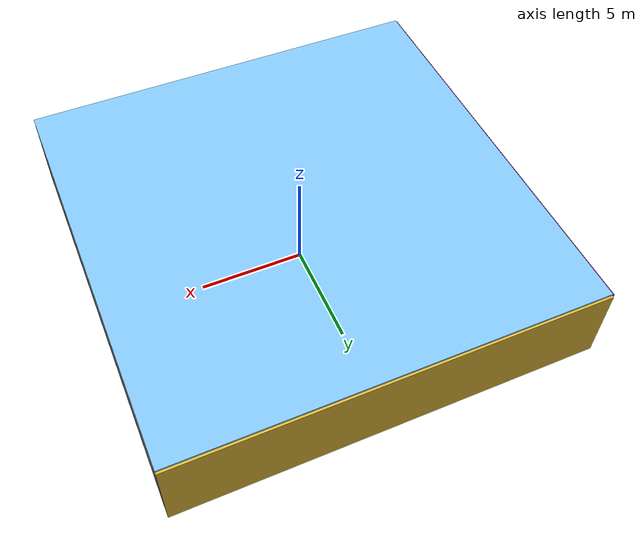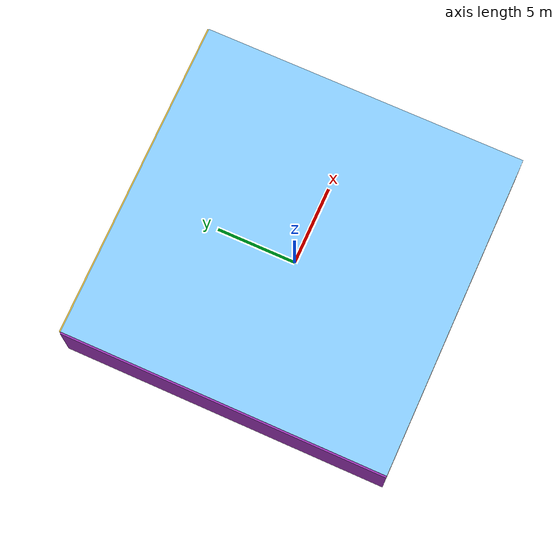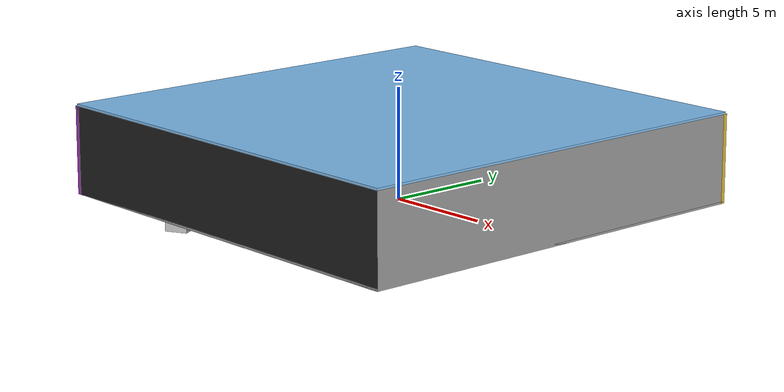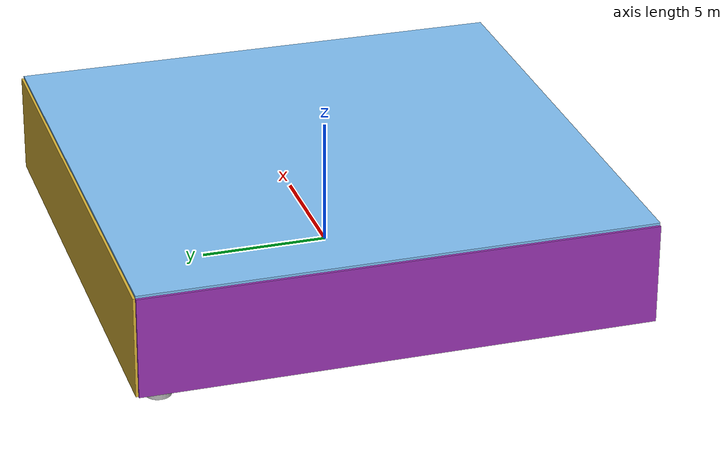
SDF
<sdf version="1.4">
 <world name="default">
  <physics type="ode">
   <max_step_size>0.001</max_step_size>
   <real_time_factor>1</real_time_factor>
   <real_time_update_rate>1000</real_time_update_rate>
   <gravity>0 0 -9.8</gravity>
  </physics>
  <scene><ambient>0.4 0.4 0.4 1</ambient><background>0.7 0.7 0.7 1</background><shadows>1</shadows></scene>
  <model name="Surrounding">
   <static>1</static>
   <link name="Ceiling">
    <collision name="Ceiling_Collision"><geometry><box><size>20 20 0.1</size></box></geometry></collision>
    <visual name="Ceiling_Visual">
     <geometry><box><size>20 20 0.1</size></box></geometry>
     <material>
      <script><uri>file://media/materials/scripts/gazebo.material</uri><name>Gazebo/SkyBlue</name></script>
     </material>
    </visual>
    <pose>0 0 4.05 0 0 0</pose>
   </link>
   <link name="Wall_South">
    <collision name="Wall_South_Collision">
     <geometry><box><size>20 0 4</size></box></geometry>
     <pose>0 0 2 0 -0 0</pose>
    </collision>
    <visual name="Wall_South_Visual">
     <pose>0 0 2 0 -0 0</pose>
     <geometry><box><size>20 0 4</size></box></geometry>
     <material>
      <script><uri>file://media/materials/scripts/gazebo.material</uri><name>Gazebo/FlatBlack</name></script>
     </material>
    </visual>
    <velocity_decay><linear>0</linear><angular>0</angular></velocity_decay>
    <pose>0 -10 0 0 -0 0</pose>
   </link>
   <link name="Wall_East">
    <collision name="Wall_21_Collision">
     <geometry><box><size>20 0 4</size></box></geometry>
     <pose>0 0 2 0 -0 0</pose>
    </collision>
    <visual name="Wall_21_Visual">
     <pose>0 0 2 0 -0 0</pose>
     <geometry><box><size>20 0 4</size></box></geometry>
     <material>
      <script><uri>file://media/materials/scripts/gazebo.material</uri><name>Gazebo/GreyGradientSky</name></script>
     </material>
    </visual>
    <velocity_decay><linear>0</linear><angular>0</angular></velocity_decay>
    <pose>10 0 0 0 -0 1.5708</pose>
   </link>
   <link name="Wall_North">
    <collision name="Wall_22_Collision">
     <geometry><box><size>20 0.2 4</size></box></geometry>
     <pose>0 0 2 0 -0 0</pose>
    </collision>
    <visual name="Wall_22_Visual">
     <pose>0 0 2 0 -0 0</pose>
     <geometry><box><size>20 0.2 4</size></box></geometry>
     <material>
      <script><uri>file://media/materials/scripts/gazebo.material</uri><name>Gazebo/Gold</name></script>
     </material>
    </visual>
    <velocity_decay><linear>0</linear><angular>0</angular></velocity_decay>
    <pose>0 10 0 0 -0 0</pose>
   </link>
   <link name="Wall_West">
    <collision name="Wall_23_Collision">
     <geometry><box><size>20 0.2 4</size></box></geometry>
     <pose>0 0 2 0 -0 0</pose>
    </collision>
    <visual name="Wall_23_Visual">
     <pose>0 0 2 0 -0 0</pose>
     <geometry><box><size>20 0.2 4</size></box></geometry>
     <material>
      <script><uri>file://media/materials/scripts/gazebo.material</uri><name>Gazebo/PurpleGlow</name></script>
     </material>
    </visual>
    <velocity_decay><linear>0</linear><angular>0</angular></velocity_decay>
    <pose>-10 0 0 0 0 -1.5708</pose>
   </link>
   <link name="Ground_link">
    <collision name="collision">
     <pose>0 0 .05 0 -0 0</pose>
     <geometry><box><size>20 20 0.1</size></box></geometry>
    </collision>
    <visual name="visual">
     <pose>0 0 .05 0 -0 0</pose>
     <geometry><box><size>20 20 0.1</size></box></geometry>
     <material>
      <script><uri>file://media/materials/scripts/gazebo.material</uri><name>Gazebo/GreyGradientSky</name></script>
     </material>
    </visual>
   </link>
   <static>1</static>
  </model>
  <spherical_coordinates>
   <surface_model>EARTH_WGS84</surface_model>
   <latitude_deg>0</latitude_deg>
   <longitude_deg>0</longitude_deg>
   <elevation>0</elevation>
   <heading_deg>0</heading_deg>
  </spherical_coordinates>
  <light name="lightball_0" type="diffuse">
   <diffuse>0.8 0.8 0.8 1</diffuse>
   <specular>0.2 0.2 0.2 1</specular>
   <attenuation>
    <range>100</range>
    <constant>0.7</constant>
    <linear>0.01</linear>
    <quadratic>0.001</quadratic>
   </attenuation>
   <direction>-0.5 0.1 -0.9</direction>
   <pose>-9.37175504772 -9.66087151027 2.27961251877 0 0 0</pose>
  </light>
  <light name="lightball_1" type="diffuse">
   <diffuse>0.8 0.8 0.8 1</diffuse>
   <specular>0.2 0.2 0.2 1</specular>
   <attenuation>
    <range>100</range>
    <constant>0.7</constant>
    <linear>0.01</linear>
    <quadratic>0.001</quadratic>
   </attenuation>
   <direction>-0.5 0.1 -0.9</direction>
   <pose>5.76442989192 -7.53862469891 0.934694591893 0 0 0</pose>
  </light>
  <light name="lightball_2" type="diffuse">
   <diffuse>0.8 0.8 0.8 1</diffuse>
   <specular>0.2 0.2 0.2 1</specular>
   <attenuation>
    <range>100</range>
    <constant>0.7</constant>
    <linear>0.01</linear>
    <quadratic>0.001</quadratic>
   </attenuation>
   <direction>-0.5 0.1 -0.9</direction>
   <pose>-4.42031138808 -2.08294366074 2.32813347147 0 0 0</pose>
  </light>
  <light name="lightball_3" type="diffuse">
   <diffuse>0.8 0.8 0.8 1</diffuse>
   <specular>0.2 0.2 0.2 1</specular>
   <attenuation>
    <range>100</range>
    <constant>0.7</constant>
    <linear>0.01</linear>
    <quadratic>0.001</quadratic>
   </attenuation>
   <direction>-0.5 0.1 -0.9</direction>
   <pose>8.90011075963 -8.58148100002 3.87098294046 0 0 0</pose>
  </light>
  <light name="lightball_4" type="diffuse">
   <diffuse>0.8 0.8 0.8 1</diffuse>
   <specular>0.2 0.2 0.2 1</specular>
   <attenuation>
    <range>100</range>
    <constant>0.7</constant>
    <linear>0.01</linear>
    <quadratic>0.001</quadratic>
   </attenuation>
   <direction>-0.5 0.1 -0.9</direction>
   <pose>2.11571157492 4.64529882751 3.40162773793 0 0 0</pose>
  </light>
  <light name="lightball_5" type="diffuse">
   <diffuse>0.8 0.8 0.8 1</diffuse>
   <specular>0.2 0.2 0.2 1</specular>
   <attenuation>
    <range>100</range>
    <constant>0.7</constant>
    <linear>0.01</linear>
    <quadratic>0.001</quadratic>
   </attenuation>
   <direction>-0.5 0.1 -0.9</direction>
   <pose>-1.65403500299 9.11955191449 0.842944997565 0 0 0</pose>
  </light>
  <light name="lightball_6" type="diffuse">
   <diffuse>0.8 0.8 0.8 1</diffuse>
   <specular>0.2 0.2 0.2 1</specular>
   <attenuation>
    <range>100</range>
    <constant>0.7</constant>
    <linear>0.01</linear>
    <quadratic>0.001</quadratic>
   </attenuation>
   <direction>-0.5 0.1 -0.9</direction>
   <pose>-4.66507652073 7.17821734603 1.24347139263 0 0 0</pose>
  </light>
  <light name="lightball_7" type="diffuse">
   <diffuse>0.8 0.8 0.8 1</diffuse>
   <specular>0.2 0.2 0.2 1</specular>
   <attenuation>
    <range>100</range>
    <constant>0.7</constant>
    <linear>0.01</linear>
    <quadratic>0.001</quadratic>
   </attenuation>
   <direction>-0.5 0.1 -0.9</direction>
   <pose>0.343576298913 5.58738139602 1.05304542649 0 0 0</pose>
  </light>
  <light name="lightball_8" type="diffuse">
   <diffuse>0.8 0.8 0.8 1</diffuse>
   <specular>0.2 0.2 0.2 1</specular>
   <attenuation>
    <range>100</range>
    <constant>0.7</constant>
    <linear>0.01</linear>
    <quadratic>0.001</quadratic>
   </attenuation>
   <direction>-0.5 0.1 -0.9</direction>
   <pose>2.65046215666 -1.24336142954 2.54206317002 0 0 0</pose>
  </light>
  <light name="lightball_9" type="diffuse">
   <diffuse>0.8 0.8 0.8 1</diffuse>
   <specular>0.2 0.2 0.2 1</specular>
   <attenuation>
    <range>100</range>
    <constant>0.7</constant>
    <linear>0.01</linear>
    <quadratic>0.001</quadratic>
   </attenuation>
   <direction>-0.5 0.1 -0.9</direction>
   <pose>9.52540828436 9.32863577403 3.22251106985 0 0 0</pose>
  </light>
  <light name="lightball_10" type="diffuse">
   <diffuse>0.8 0.8 0.8 1</diffuse>
   <specular>0.2 0.2 0.2 1</specular>
   <attenuation>
    <range>100</range>
    <constant>0.7</constant>
    <linear>0.01</linear>
    <quadratic>0.001</quadratic>
   </attenuation>
   <direction>-0.5 0.1 -0.9</direction>
   <pose>1.38117098153 -0.0444772825651 2.66981511581 0 0 0</pose>
  </light>
  <light name="lightball_11" type="diffuse">
   <diffuse>0.8 0.8 0.8 1</diffuse>
   <specular>0.2 0.2 0.2 1</specular>
   <attenuation>
    <range>100</range>
    <constant>0.7</constant>
    <linear>0.01</linear>
    <quadratic>0.001</quadratic>
   </attenuation>
   <direction>-0.5 0.1 -0.9</direction>
   <pose>-4.18310106585 5.16043439485 1.20284502252 0 0 0</pose>
  </light>
  <include>
   <uri>model://textured_shapes</uri>
   <pose>-7.98987374921 8.06761121607 0 0 0 0.844658166208</pose>
  </include>
  <include>
   <uri>model://textured_shapes</uri>
   <pose>-4.43644495061 -7.76475132743 0 0 0 0.472243015669</pose>
  </include>
  <include><uri>model://table</uri><pose>-4.44593725136 6.88263936844 0 0 0 0.618771882478</pose></include>
  <include><uri>model://cabinet</uri><pose>-1.94301162736 -4.03707042302 0 0 0 1.28502926793</pose></include>
  <include>
   <uri>model://robocup_3Dsim_goal</uri>
   <pose>1.4033523125 -4.30619276756 0 0 0 3.05004631692</pose>
  </include>
  <include>
   <uri>model://construction_cone</uri>
   <pose>4.11416300927 0.871801057822 0 0 0 0.907486513453</pose>
  </include>
  <include><uri>model://cabinet</uri><pose>6.93279639992 -4.02896350449 0 0 0 2.84905338395</pose></include>
  <include><uri>model://cabinet</uri><pose>7.6070878682 4.18374281052 0 0 0 1.78719721537</pose></include>
  <include>
   <uri>model://textured_shapes</uri>
   <pose>7.05788545916 7.20138607609 0 0 0 2.8929123026</pose>
  </include>
 </world>
</sdf>

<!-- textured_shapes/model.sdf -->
<sdf version="1.6">
  <model name="textured_shapes">
    <pose>0 0 0.5 0 0 0</pose>
    <link name="box">
      <pose>0 -1.5 0 0 0 0</pose>
      <collision name="collision">
        <geometry>
          <box>
            <size>1 1 1</size>
          </box>
        </geometry>
      </collision>
      <visual name="visual">
        <geometry>
          <box>
            <size>1 1 1</size>
          </box>
        </geometry>
        <material>
          <script>
            <uri>model://../model_source/models/textured_shapes/materials/scripts</uri>
            <uri>model://../model_source/models/textured_shapes/materials/textures</uri>
            <name>TexturedShape/Squares</name>
          </script>
        </material>
      </visual>
    </link>
    <link name="sphere">
      <collision name="collision">
        <geometry>
          <sphere>
            <radius>0.5</radius>
          </sphere>
        </geometry>
      </collision>
      <visual name="visual">
        <geometry>
          <sphere>
            <radius>0.5</radius>
          </sphere>
        </geometry>
        <material>
          <script>
            <uri>model://../model_source/models/textured_shapes/materials/scripts</uri>
            <uri>model://../model_source/models/textured_shapes/materials/textures</uri>
            <name>TexturedShape/Squares</name>
          </script>
        </material>
      </visual>
    </link>
    <link name="cylinder">
      <pose>0 1.5 0 0 0 0</pose>
      <collision name="collision">
        <geometry>
          <cylinder>
            <radius>0.5</radius>
            <length>1</length>
          </cylinder>
        </geometry>
      </collision>
      <visual name="visual">
        <geometry>
          <cylinder>
            <radius>0.5</radius>
            <length>1</length>
          </cylinder>
        </geometry>
        <material>
          <script>
            <uri>model://../model_source/models/textured_shapes/materials/scripts</uri>
            <uri>model://../model_source/models/textured_shapes/materials/textures</uri>
            <name>TexturedShape/Squares</name>
          </script>
        </material>
      </visual>
    </link>
  </model>
</sdf>

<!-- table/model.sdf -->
<sdf version="1.5">
  <model name="table">
    <static>true</static>
    <link name="link">
      <collision name="surface">
        <pose>0 0 1.0 0 0 0</pose>
        <geometry>
          <box>
            <size>1.5 0.8 0.03</size>
          </box>
        </geometry>
        <surface>
          <friction>
            <ode>
              <mu>0.6</mu>
              <mu2>0.6</mu2>
            </ode>
          </friction>
        </surface>
      </collision>
      <visual name="visual1">
        <pose>0 0 1.0 0 0 0</pose>
        <geometry>
          <box>
            <size>1.5 0.8 0.03</size>
          </box>
        </geometry>
        <material>
          <script>
            <uri>model://media/materials/scripts/gazebo.material</uri>
            <name>Gazebo/Wood</name>
          </script>
        </material>
      </visual>
      <collision name="front_left_leg">
        <pose>0.68 0.38 0.5 0 0 0</pose>
        <geometry>
          <cylinder>
            <radius>0.02</radius>
            <length>1.0</length>
          </cylinder>
        </geometry>
      </collision>
      <visual name="front_left_leg">
        <pose>0.68 0.38 0.5 0 0 0</pose>
        <geometry>
          <cylinder>
            <radius>0.02</radius>
            <length>1.0</length>
          </cylinder>
        </geometry>
        <material>
          <script>
            <uri>model://media/materials/scripts/gazebo.material</uri>
            <name>Gazebo/Grey</name>
          </script>
        </material>
      </visual>
      <collision name="front_right_leg">
        <pose>0.68 -0.38 0.5 0 0 0</pose>
        <geometry>
          <cylinder>
            <radius>0.02</radius>
            <length>1.0</length>
          </cylinder>
        </geometry>
      </collision>
      <visual name="front_right_leg">
        <pose>0.68 -0.38 0.5 0 0 0</pose>
        <geometry>
          <cylinder>
            <radius>0.02</radius>
            <length>1.0</length>
          </cylinder>
        </geometry>
        <material>
          <script>
            <uri>model://media/materials/scripts/gazebo.material</uri>
            <name>Gazebo/Grey</name>
          </script>
        </material>
      </visual>
      <collision name="back_right_leg">
        <pose>-0.68 -0.38 0.5 0 0 0</pose>
        <geometry>
          <cylinder>
            <radius>0.02</radius>
            <length>1.0</length>
          </cylinder>
        </geometry>
      </collision>
      <visual name="back_right_leg">
        <pose>-0.68 -0.38 0.5 0 0 0</pose>
        <geometry>
          <cylinder>
            <radius>0.02</radius>
            <length>1.0</length>
          </cylinder>
        </geometry>
        <material>
          <script>
            <uri>model://media/materials/scripts/gazebo.material</uri>
            <name>Gazebo/Grey</name>
          </script>
        </material>
      </visual>
      <collision name="back_left_leg">
        <pose>-0.68 0.38 0.5 0 0 0</pose>
        <geometry>
          <cylinder>
            <radius>0.02</radius>
            <length>1.0</length>
          </cylinder>
        </geometry>
      </collision>
      <visual name="back_left_leg">
        <pose>-0.68 0.38 0.5 0 0 0</pose>
        <geometry>
          <cylinder>
            <radius>0.02</radius>
            <length>1.0</length>
          </cylinder>
        </geometry>
        <material>
          <script>
            <uri>model://media/materials/scripts/gazebo.material</uri>
            <name>Gazebo/Grey</name>
          </script>
        </material>
      </visual>
    </link>
  </model>
</sdf>

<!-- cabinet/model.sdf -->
<sdf version="1.5">
  <model name="cabinet">
    <static>true</static>
    <link name="cabinet_bottom_plate">
      <inertial>
        <pose>0 0 -1 0 0 0</pose>
        <inertia>
          <ixx>2.050000</ixx>
          <ixy>0</ixy>
          <ixz>0</ixz>
          <iyy>2.050000</iyy>
          <iyz>0</iyz>
          <izz>2.050000</izz>
        </inertia>
        <mass>25.000000</mass>
      </inertial>
      <collision name="cabinet_bottom_plate_geom">
        <pose>0 0 0.010000 0 0 0</pose>
        <geometry>
          <box>
            <size>0.450000 0.450000 0.020000</size>
          </box>
        </geometry>
      </collision>
      <visual name="cabinet_bottom_plate_geom_visual">
        <pose>0 0 0.010000 0 0 0</pose>
        <geometry>
          <box>
            <size>0.450000 0.450000 0.020000</size>
          </box>
        </geometry>
        <material>
          <script>
            <uri>model://media/materials/scripts/gazebo.material</uri>
            <name>Gazebo/Wood</name>
          </script>
        </material>
      </visual>
      <collision name="cabinet_bottom_plate_geom_cabinet_back_plate">
        <pose>0.235000 0 0.510000 0 0 0</pose>
        <geometry>
          <box>
            <size>0.020000 0.450000 1.020000</size>
          </box>
        </geometry>
      </collision>
      <visual name="cabinet_bottom_plate_geom_cabinet_back_plate_visual">
        <pose>0.235000 0 0.510000 0 0 0</pose>
        <geometry>
          <box>
            <size>0.020000 0.450000 1.020000</size>
          </box>
        </geometry>
        <material>
          <script>
            <uri>model://media/materials/scripts/gazebo.material</uri>
            <name>Gazebo/Wood</name>
          </script>
        </material>
      </visual>
      <collision name="cabinet_bottom_plate_geom_cabinet_left_plate">
        <pose>0 0.235000 0.510000 0 0 0</pose>
        <geometry>
          <box>
            <size>0.450000 0.020000 1.020000</size>
          </box>
        </geometry>
      </collision>
      <visual name="cabinet_bottom_plate_geom_cabinet_left_plate_visual">
        <pose>0 0.235000 0.510000 0 0 0</pose>
        <geometry>
          <box>
            <size>0.450000 0.020000 1.020000</size>
          </box>
        </geometry>
        <material>
          <script>
            <uri>model://media/materials/scripts/gazebo.material</uri>
            <name>Gazebo/Wood</name>
          </script>
        </material>
      </visual>
      <collision name="cabinet_bottom_plate_geom_cabinet_middle_plate">
        <pose>0 0 0.510000 0 0 0</pose>
        <geometry>
          <box>
            <size>0.450000 0.450000 0.020000</size>
          </box>
        </geometry>
      </collision>
      <visual name="cabinet_bottom_plate_geom_cabinet_middle_plate_visual">
        <pose>0 0 0.510000 0 0 0</pose>
        <geometry>
          <box>
            <size>0.450000 0.450000 0.020000</size>
          </box>
        </geometry>
        <material>
          <script>
            <uri>model://media/materials/scripts/gazebo.material</uri>
            <name>Gazebo/Wood</name>
          </script>
        </material>
      </visual>
      <collision name="cabinet_bottom_plate_geom_cabinet_right_plate">
        <pose>0 -0.235000 0.510000 0 0 0</pose>
        <geometry>
          <box>
            <size>0.450000 0.020000 1.020000</size>
          </box>
        </geometry>
      </collision>
      <visual name="cabinet_bottom_plate_geom_cabinet_right_plate_visual">
        <pose>0 -0.235000 0.510000 0 0 0</pose>
        <geometry>
          <box>
            <size>0.450000 0.020000 1.020000</size>
          </box>
        </geometry>
        <material>
          <script>
            <uri>model://media/materials/scripts/gazebo.material</uri>
            <name>Gazebo/Wood</name>
          </script>
        </material>
      </visual>
      <collision name="cabinet_bottom_plate_geom_cabinet_top_plate">
        <pose>0 0 1.010000 0 0 0</pose>
        <geometry>
          <box>
            <size>0.450000 0.450000 0.020000</size>
          </box>
        </geometry>
      </collision>
      <visual name="cabinet_bottom_plate_geom_cabinet_top_plate_visual">
        <pose>0 0 1.010000 0 0 0</pose>
        <geometry>
          <box>
            <size>0.450000 0.450000 0.020000</size>
          </box>
        </geometry>
        <material>
          <script>
            <uri>model://media/materials/scripts/gazebo.material</uri>
            <name>Gazebo/Wood</name>
          </script>
        </material>
      </visual>
    </link>
  </model>
</sdf>

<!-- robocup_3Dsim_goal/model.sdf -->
<sdf version="1.5">
  <model name="robocup_3d_goal">
    <static>true</static>
    <link name="left_post">
      <pose>0 1.05 0.45 0 0 0</pose>
      <collision name="collision">
        <geometry>
          <cylinder>
            <radius>0.05</radius>
            <length>0.9</length>
          </cylinder>
        </geometry>
      </collision>
      <visual name="visual">
        <geometry>
          <cylinder>
            <radius>0.05</radius>
            <length>0.9</length>
          </cylinder>
        </geometry>
        <material>
          <script>
            <uri>file://media/materials/scripts/gazebo.material</uri>
            <name>Gazebo/ZincYellow</name>
          </script>
        </material>
      </visual>
    </link>
    <link name="left_support_horiz_lower">
      <pose>0.30 1.05 0.01 0 0 0</pose>
      <collision name="collision">
        <geometry>
          <box>
            <size>0.50 0.02 0.02</size>
          </box>
        </geometry>
      </collision>
      <visual name="visual">
        <geometry>
          <box>
            <size>0.50 0.02 0.02</size>
          </box>
        </geometry>
        <material>
          <script>
            <uri>file://media/materials/scripts/gazebo.material</uri>
            <name>Gazebo/White</name>
          </script>
        </material>
      </visual>
    </link>
    <link name="left_support_horiz_upper">
      <pose>0.30 1.05 0.79 0 0 0</pose>
      <collision name="collision">
        <geometry>
          <box>
            <size>0.50 0.02 0.02</size>
          </box>
        </geometry>
      </collision>
      <visual name="visual">
        <geometry>
          <box>
            <size>0.50 0.02 0.02</size>
          </box>
        </geometry>
        <material>
          <script>
            <uri>file://media/materials/scripts/gazebo.material</uri>
            <name>Gazebo/White</name>
          </script>
        </material>
      </visual>
    </link>
    <link name="left_support_vertical">
      <pose>0.56 1.05 0.4 0 1.5708 0</pose>
      <collision name="collision">
        <geometry>
          <box>
            <size>0.80 0.02 0.02</size>
          </box>
        </geometry>
      </collision>
      <visual name="visual">
        <geometry>
          <box>
            <size>0.80 0.02 0.02</size>
          </box>
        </geometry>
        <material>
          <script>
            <uri>file://media/materials/scripts/gazebo.material</uri>
            <name>Gazebo/White</name>
          </script>
        </material>
      </visual>
    </link>
    <link name="right_support_horiz_lower">
      <pose>0.30 -1.05 0.01 0 0 0</pose>
      <collision name="collision">
        <geometry>
          <box>
            <size>0.50 0.02 0.02</size>
          </box>
        </geometry>
      </collision>
      <visual name="visual">
        <geometry>
          <box>
            <size>0.50 0.02 0.02</size>
          </box>
        </geometry>
        <material>
          <script>
            <uri>file://media/materials/scripts/gazebo.material</uri>
            <name>Gazebo/White</name>
          </script>
        </material>
      </visual>
    </link>
    <link name="right_support_horiz_upper">
      <pose>0.30 -1.05 0.79 0 0 0</pose>
      <collision name="collision">
        <geometry>
          <box>
            <size>0.50 0.02 0.02</size>
          </box>
        </geometry>
      </collision>
      <visual name="visual">
        <geometry>
          <box>
            <size>0.50 0.02 0.02</size>
          </box>
        </geometry>
        <material>
          <script>
            <uri>file://media/materials/scripts/gazebo.material</uri>
            <name>Gazebo/White</name>
          </script>
        </material>
      </visual>
    </link>
    <link name="right_support_vertical">
      <pose>0.56 -1.05 0.4 0 1.5708 0</pose>
      <collision name="collision">
        <geometry>
          <box>
            <size>0.80 0.02 0.02</size>
          </box>
        </geometry>
      </collision>
      <visual name="visual">
        <geometry>
          <box>
            <size>0.80 0.02 0.02</size>
          </box>
        </geometry>
        <material>
          <script>
            <uri>file://media/materials/scripts/gazebo.material</uri>
            <name>Gazebo/White</name>
          </script>
        </material>
      </visual>
    </link>
    <link name="center_support_horiz_lower">
      <pose>0.56 0 0.01 0 1.5708 0</pose>
      <collision name="collision">
        <geometry>
          <box>
            <size>0.02 2.08 0.02</size>
          </box>
        </geometry>
      </collision>
      <visual name="visual">
        <geometry>
          <box>
            <size>0.02 2.08 0.02</size>
          </box>
        </geometry>
        <material>
          <script>
            <uri>file://media/materials/scripts/gazebo.material</uri>
            <name>Gazebo/White</name>
          </script>
        </material>
      </visual>
    </link>
    <link name="center_support_horiz_upper">
      <pose>0.56 0 0.79 0 1.5708 0</pose>
      <collision name="collision">
        <geometry>
          <box>
            <size>0.02 2.08 0.02</size>
          </box>
        </geometry>
      </collision>
      <visual name="visual">
        <geometry>
          <box>
            <size>0.02 2.08 0.02</size>
          </box>
        </geometry>
        <material>
          <script>
            <uri>file://media/materials/scripts/gazebo.material</uri>
            <name>Gazebo/White</name>
          </script>
        </material>
      </visual>
    </link>
    <link name="right_post">
      <pose>0 -1.05 0.45 0 0 0</pose>
      <collision name="collision">
        <geometry>
          <cylinder>
            <radius>0.05</radius>
            <length>0.9</length>
          </cylinder>
        </geometry>
      </collision>
      <visual name="visual">
        <geometry>
          <cylinder>
            <radius>0.05</radius>
            <length>0.9</length>
          </cylinder>
        </geometry>
        <material>
          <script>
            <uri>file://media/materials/scripts/gazebo.material</uri>
            <name>Gazebo/ZincYellow</name>
          </script>
        </material>
      </visual>
    </link>
    <link name="crossbar">
      <pose>0 0 0.85 1.57 1.57 0</pose>
      <collision name="collision">
        <geometry>
          <cylinder>
            <radius>0.05</radius>
            <length>2.0</length>
          </cylinder>
        </geometry>
      </collision>
      <visual name="visual">
        <geometry>
          <cylinder>
            <radius>0.05</radius>
            <length>2.0</length>
          </cylinder>
        </geometry>
        <material>
          <script>
            <uri>file://media/materials/scripts/gazebo.material</uri>
            <name>Gazebo/ZincYellow</name>
          </script>
        </material>
      </visual>
    </link>
    <link name="center_net">
      <pose>0.56 0 0.40 0 0 0</pose>
      <collision name="collision">
        <geometry>
          <box>
            <size>0.01 2.1 0.80</size>
          </box>
        </geometry>
      </collision>
      <visual name="visual">
        <geometry>
          <box>
            <size>0.01 2.1 0.80</size>
          </box>
        </geometry>
        <material>
          <script>
            <uri>model://../model_source/models/robocup09_spl_field/materials/scripts/</uri>
            <uri>model://../model_source/models/robocup09_spl_field/materials/textures/</uri>
            <name>RoboCup/Net</name>
          </script>
        </material>
      </visual>
    </link>
    <link name="left_net">
      <pose>0.30 1.05 0.40 0 0 0</pose>
      <collision name="collision">
        <geometry>
          <box>
            <size>0.50 0.01 0.76</size>
          </box>
        </geometry>
      </collision>
      <visual name="visual">
        <geometry>
          <box>
            <size>0.50 0.01 0.76</size>
          </box>
        </geometry>
        <material>
          <script>
            <uri>model://../model_source/models/robocup09_spl_field/materials/scripts/</uri>
            <uri>model://../model_source/models/robocup09_spl_field/materials/textures/</uri>
            <name>RoboCup/Net</name>
          </script>
        </material>
      </visual>
    </link>
    <link name="right_net">
      <pose>0.30 -1.05 0.40 0 0 0</pose>
      <collision name="collision">
        <geometry>
          <box>
            <size>0.50 0.01 0.76</size>
          </box>
        </geometry>
      </collision>
      <visual name="visual">
        <geometry>
          <box>
            <size>0.50 0.01 0.76</size>
          </box>
        </geometry>
        <material>
          <script>
            <uri>model://../model_source/models/robocup09_spl_field/materials/scripts/</uri>
            <uri>model://../model_source/models/robocup09_spl_field/materials/textures/</uri>
            <name>RoboCup/Net</name>
          </script>
        </material>
      </visual>
    </link>
  </model>
</sdf>

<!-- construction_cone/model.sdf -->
<sdf version="1.5">
  <model name="Construction Cone">
    <link name="link">
      <collision name="collision">
        <geometry>
          <mesh>
            <scale>10 10 10</scale>
            <uri>file://isr-testbed/construction_cone/meshes/construction_cone.dae</uri>
          </mesh>
        </geometry>
      </collision>
      <visual name="visual">
        <geometry>
          <mesh>
            <scale>10 10 10</scale>
            <uri>file://isr-testbed/construction_cone/meshes/construction_cone.dae</uri>
          </mesh>
        </geometry>
      </visual>
    </link>
  </model>
</sdf>
